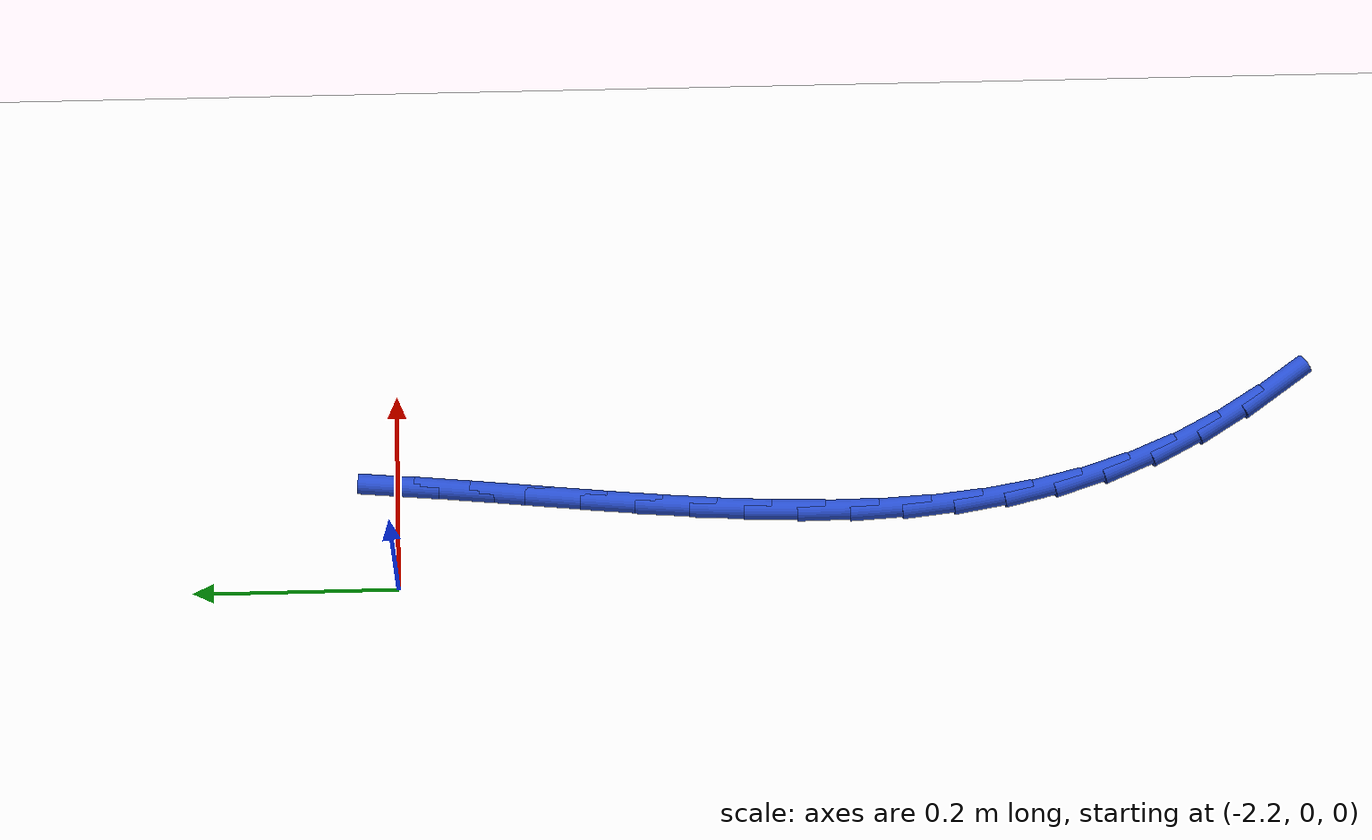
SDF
<sdf version="1.6">
 <world name="default">
  <model name="ground_plane">
   <static>1</static>
   <link name="link">
    <collision name="collision">
     <geometry><plane><normal>0 0 1</normal><size>100 100</size></plane></geometry>
     <surface><friction><ode><mu>100</mu><mu2>50</mu2></ode></friction></surface>
    </collision>
    <visual name="visual">
     <cast_shadows>0</cast_shadows>
     <geometry><plane><normal>0 0 1</normal><size>100 100</size></plane></geometry>
     <material>
      <script><uri>file://media/materials/scripts/gazebo.material</uri><name>Gazebo/WhiteGlow</name></script>
     </material>
    </visual>
   </link>
  </model>
  <model name="line">
   <link name="link_70">
    <pose>-2.0960097986036486 -0.001555384675006691 0.01 0 1.57 1.4810394739244146</pose>
    <collision name="collision">
     <geometry><cylinder><radius>0.01</radius><length>0.08</length></cylinder></geometry>
    </collision>
    <visual name="visual">
     <material>
      <script><name>Gazebo/Blue</name><uri>file://media/materials/scripts/gazebo.material</uri></script>
     </material>
     <geometry><cylinder><radius>0.01</radius><length>0.08</length></cylinder></geometry>
    </visual>
   </link>
   <link name="link_71">
    <pose>-2.1009266787258296 -0.05618819461151432 0.01 0 1.57 1.471226439560285</pose>
    <collision name="collision">
     <geometry><cylinder><radius>0.01</radius><length>0.08</length></cylinder></geometry>
    </collision>
    <visual name="visual">
     <material>
      <script><name>Gazebo/Blue</name><uri>file://media/materials/scripts/gazebo.material</uri></script>
     </material>
     <geometry><cylinder><radius>0.01</radius><length>0.08</length></cylinder></geometry>
    </visual>
   </link>
   <link name="link_72">
    <pose>-2.106370039042766 -0.11067615056541998 0.01 0 1.57 1.4676853603187638</pose>
    <collision name="collision">
     <geometry><cylinder><radius>0.01</radius><length>0.08</length></cylinder></geometry>
    </collision>
    <visual name="visual">
     <material>
      <script><name>Gazebo/Blue</name><uri>file://media/materials/scripts/gazebo.material</uri></script>
     </material>
     <geometry><cylinder><radius>0.01</radius><length>0.08</length></cylinder></geometry>
    </visual>
   </link>
   <link name="link_73">
    <pose>-2.1119860687435508 -0.164948870549999 0.01 0 1.57 1.4704642289788816</pose>
    <collision name="collision">
     <geometry><cylinder><radius>0.01</radius><length>0.08</length></cylinder></geometry>
    </collision>
    <visual name="visual">
     <material>
      <script><name>Gazebo/Blue</name><uri>file://media/materials/scripts/gazebo.material</uri></script>
     </material>
     <geometry><cylinder><radius>0.01</radius><length>0.08</length></cylinder></geometry>
    </visual>
   </link>
   <link name="link_74">
    <pose>-2.117420957017276 -0.2189359725785244 0.01 0 1.57 1.4796855732080632</pose>
    <collision name="collision">
     <geometry><cylinder><radius>0.01</radius><length>0.08</length></cylinder></geometry>
    </collision>
    <visual name="visual">
     <material>
      <script><name>Gazebo/Blue</name><uri>file://media/materials/scripts/gazebo.material</uri></script>
     </material>
     <geometry><cylinder><radius>0.01</radius><length>0.08</length></cylinder></geometry>
    </visual>
   </link>
   <link name="link_75">
    <pose>-2.122320893053035 -0.27256707466427166 0.01 0 1.57 1.495547379804677</pose>
    <collision name="collision">
     <geometry><cylinder><radius>0.01</radius><length>0.08</length></cylinder></geometry>
    </collision>
    <visual name="visual">
     <material>
      <script><name>Gazebo/Blue</name><uri>file://media/materials/scripts/gazebo.material</uri></script>
     </material>
     <geometry><cylinder><radius>0.01</radius><length>0.08</length></cylinder></geometry>
    </visual>
   </link>
   <link name="link_76">
    <pose>-2.126332066039919 -0.3257717948205154 0.01 0 1.57 1.518317398589834</pose>
    <collision name="collision">
     <geometry><cylinder><radius>0.01</radius><length>0.08</length></cylinder></geometry>
    </collision>
    <visual name="visual">
     <material>
      <script><name>Gazebo/Blue</name><uri>file://media/materials/scripts/gazebo.material</uri></script>
     </material>
     <geometry><cylinder><radius>0.01</radius><length>0.08</length></cylinder></geometry>
    </visual>
   </link>
   <link name="link_77">
    <pose>-2.129100665167023 -0.3784797510605303 0.01 0 1.57 1.5483184055845474</pose>
    <collision name="collision">
     <geometry><cylinder><radius>0.01</radius><length>0.08</length></cylinder></geometry>
    </collision>
    <visual name="visual">
     <material>
      <script><name>Gazebo/Blue</name><uri>file://media/materials/scripts/gazebo.material</uri></script>
     </material>
     <geometry><cylinder><radius>0.01</radius><length>0.08</length></cylinder></geometry>
    </visual>
   </link>
   <link name="link_78">
    <pose>-2.1302728796234374 -0.43062056139759153 0.01 0 1.57 -1.5556920106356706</pose>
    <collision name="collision">
     <geometry><cylinder><radius>0.01</radius><length>0.08</length></cylinder></geometry>
    </collision>
    <visual name="visual">
     <material>
      <script><name>Gazebo/Blue</name><uri>file://media/materials/scripts/gazebo.material</uri></script>
     </material>
     <geometry><cylinder><radius>0.01</radius><length>0.08</length></cylinder></geometry>
    </visual>
   </link>
   <link name="link_79">
    <pose>-2.1294948985982556 -0.48212384384497253 0.01 0 1.57 -1.5101960500154947</pose>
    <collision name="collision">
     <geometry><cylinder><radius>0.01</radius><length>0.08</length></cylinder></geometry>
    </collision>
    <visual name="visual">
     <material>
      <script><name>Gazebo/Blue</name><uri>file://media/materials/scripts/gazebo.material</uri></script>
     </material>
     <geometry><cylinder><radius>0.01</radius><length>0.08</length></cylinder></geometry>
    </visual>
   </link>
   <link name="link_80">
    <pose>-2.1264129112805707 -0.5329192164159484 0.01 0 1.57 -1.4565392475797618</pose>
    <collision name="collision">
     <geometry><cylinder><radius>0.01</radius><length>0.08</length></cylinder></geometry>
    </collision>
    <visual name="visual">
     <material>
      <script><name>Gazebo/Blue</name><uri>file://media/materials/scripts/gazebo.material</uri></script>
     </material>
     <geometry><cylinder><radius>0.01</radius><length>0.08</length></cylinder></geometry>
    </visual>
   </link>
   <link name="link_81">
    <pose>-2.120673106859474 -0.5829362971237938 0.01 0 1.57 -1.3946520214520397</pose>
    <collision name="collision">
     <geometry><cylinder><radius>0.01</radius><length>0.08</length></cylinder></geometry>
    </collision>
    <visual name="visual">
     <material>
      <script><name>Gazebo/Blue</name><uri>file://media/materials/scripts/gazebo.material</uri></script>
     </material>
     <geometry><cylinder><radius>0.01</radius><length>0.08</length></cylinder></geometry>
    </visual>
   </link>
   <link name="link_82">
    <pose>-2.111921674524059 -0.6321047039817843 0.01 0 1.57 -1.3247541923968933</pose>
    <collision name="collision">
     <geometry><cylinder><radius>0.01</radius><length>0.08</length></cylinder></geometry>
    </collision>
    <visual name="visual">
     <material>
      <script><name>Gazebo/Blue</name><uri>file://media/materials/scripts/gazebo.material</uri></script>
     </material>
     <geometry><cylinder><radius>0.01</radius><length>0.08</length></cylinder></geometry>
    </visual>
   </link>
   <link name="link_83">
    <pose>-2.0998048034634187 -0.6803540550031928 0.01 0 1.57 -1.2474694818768162</pose>
    <collision name="collision">
     <geometry><cylinder><radius>0.01</radius><length>0.08</length></cylinder></geometry>
    </collision>
    <visual name="visual">
     <material>
      <script><name>Gazebo/Blue</name><uri>file://media/materials/scripts/gazebo.material</uri></script>
     </material>
     <geometry><cylinder><radius>0.01</radius><length>0.08</length></cylinder></geometry>
    </visual>
   </link>
   <link name="link_84">
    <pose>-2.0839686828666446 -0.7276139682012948 0.01 0 1.57 -1.1639104679336971</pose>
    <collision name="collision">
     <geometry><cylinder><radius>0.01</radius><length>0.08</length></cylinder></geometry>
    </collision>
    <visual name="visual">
     <material>
      <script><name>Gazebo/Blue</name><uri>file://media/materials/scripts/gazebo.material</uri></script>
     </material>
     <geometry><cylinder><radius>0.01</radius><length>0.08</length></cylinder></geometry>
    </visual>
   </link>
   <link name="link_85">
    <pose>-2.06405950192283 -0.7738140615893649 0.01 0 1.57 -1.0780130607622607</pose>
    <collision name="collision">
     <geometry><cylinder><radius>0.01</radius><length>0.08</length></cylinder></geometry>
    </collision>
    <visual name="visual">
     <material>
      <script><name>Gazebo/Blue</name><uri>file://media/materials/scripts/gazebo.material</uri></script>
     </material>
     <geometry><cylinder><radius>0.01</radius><length>0.08</length></cylinder></geometry>
    </visual>
   </link>
   <link name="link_86">
    <pose>-2.0398544387919384 -0.8188913041420388 0.01 0 1.57 -1.002111576772085</pose>
    <collision name="collision">
     <geometry><cylinder><radius>0.01</radius><length>0.08</length></cylinder></geometry>
    </collision>
    <visual name="visual">
     <material>
      <script><name>Gazebo/Blue</name><uri>file://media/materials/scripts/gazebo.material</uri></script>
     </material>
     <geometry><cylinder><radius>0.01</radius><length>0.08</length></cylinder></geometry>
    </visual>
   </link>
   <link name="link_87">
    <pose>-2.0117795601955213 -0.8628190797680667 0.01 0 1.57 -0.9386778110386143</pose>
    <collision name="collision">
     <geometry><cylinder><radius>0.01</radius><length>0.08</length></cylinder></geometry>
    </collision>
    <visual name="visual">
     <material>
      <script><name>Gazebo/Blue</name><uri>file://media/materials/scripts/gazebo.material</uri></script>
     </material>
     <geometry><cylinder><radius>0.01</radius><length>0.08</length></cylinder></geometry>
    </visual>
   </link>
  </model>
 </world>
</sdf>
